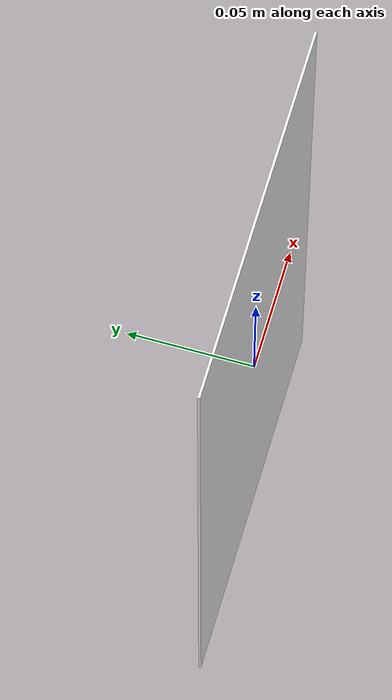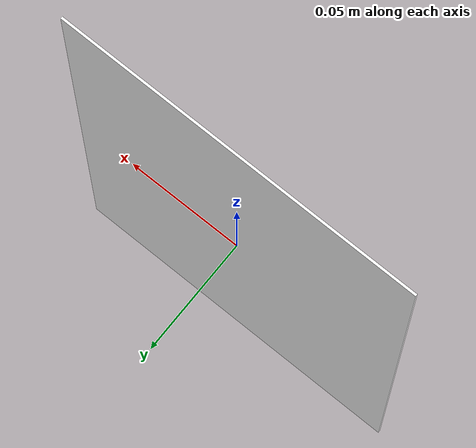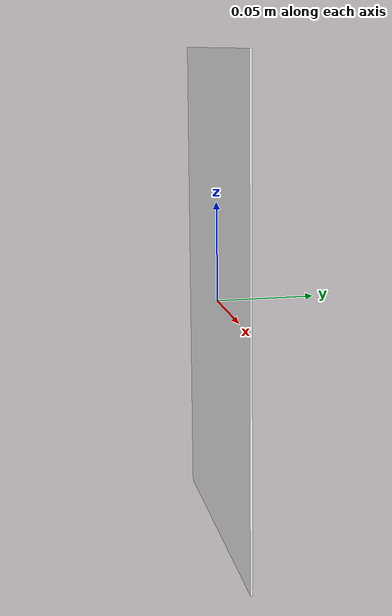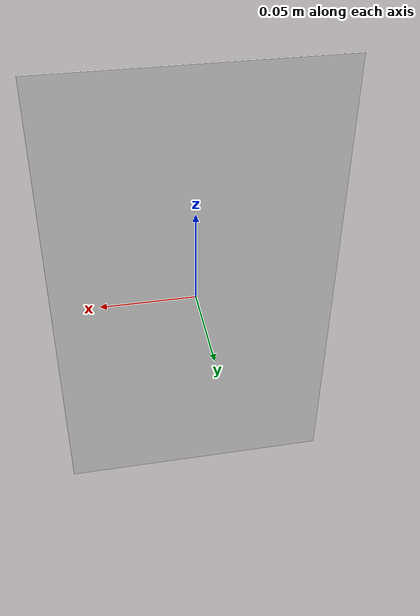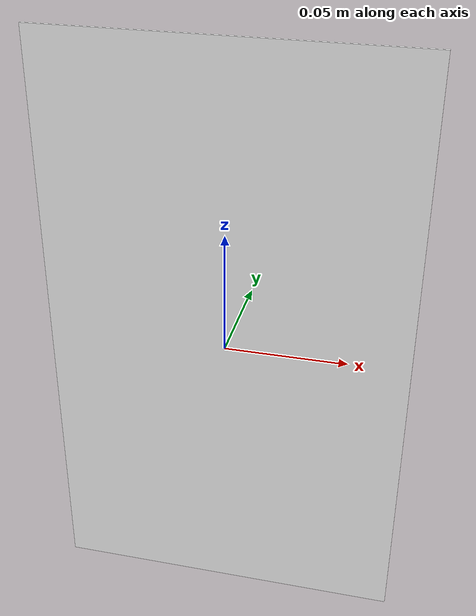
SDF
<?xml version="1.0"?>
<sdf version="1.9">
  <model name="tablet_screen">
    <static>false</static>
    <link name="screen_link">
      <pose>0 0 0 0 0 0</pose>

      <!-- Visual screen surface -->
      <visual name="screen_visual">
        <geometry>
          <box>
            <size>0.15 0.001 0.25</size>
          </box>
        </geometry>
        <material>
          <ambient>1 1 1 1</ambient>
          <diffuse>1 1 1 1</diffuse>
          <specular>0.1 0.1 0.1 1</specular>
          <emissive>0.8 0.8 0.8 1</emissive>
        </material>
        <plugin filename="gz-sim-apply-joint-force-system" name="gz::sim::systems::ApplyJointForce"/>
      </visual>
    </link>

    <!-- Camera sensor to enable texture update -->
    <plugin filename="gz-sim-scene-broadcaster-system" name="gz::sim::systems::SceneBroadcaster"/>
  </model>
</sdf>
